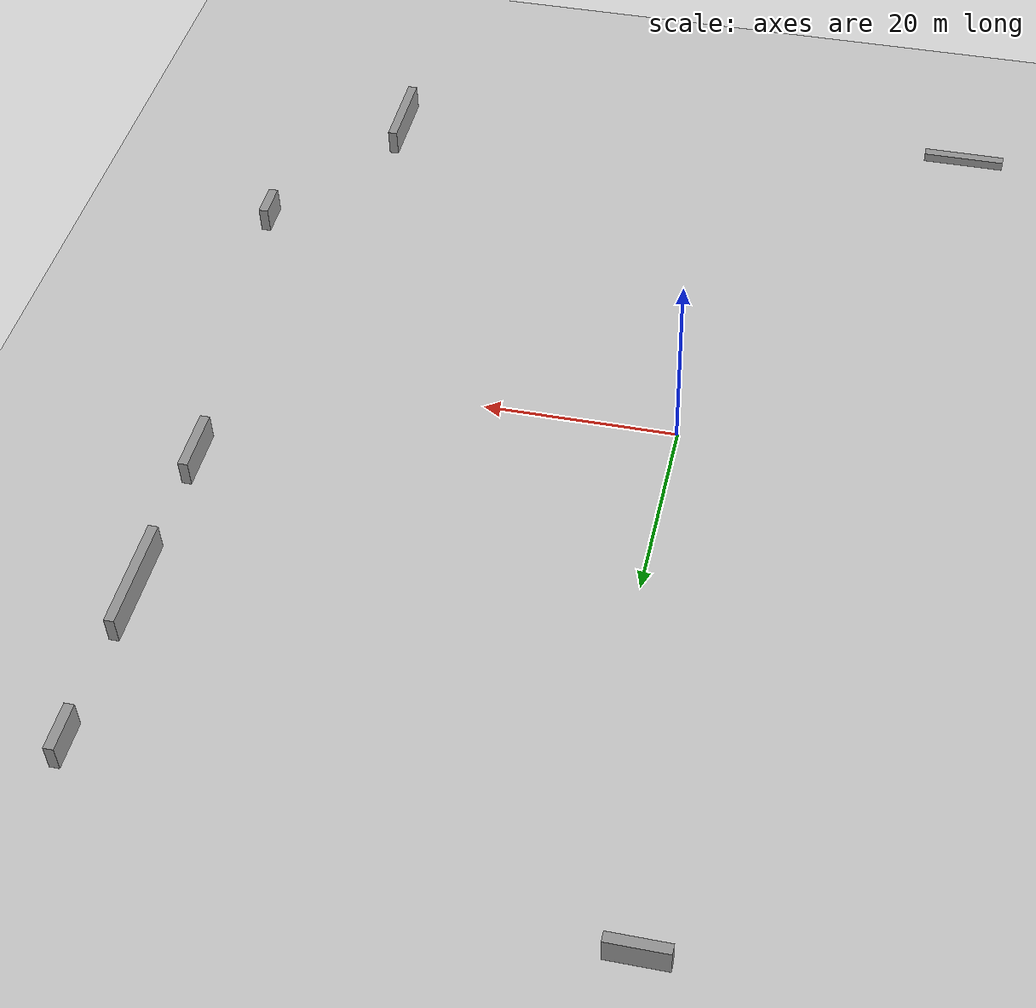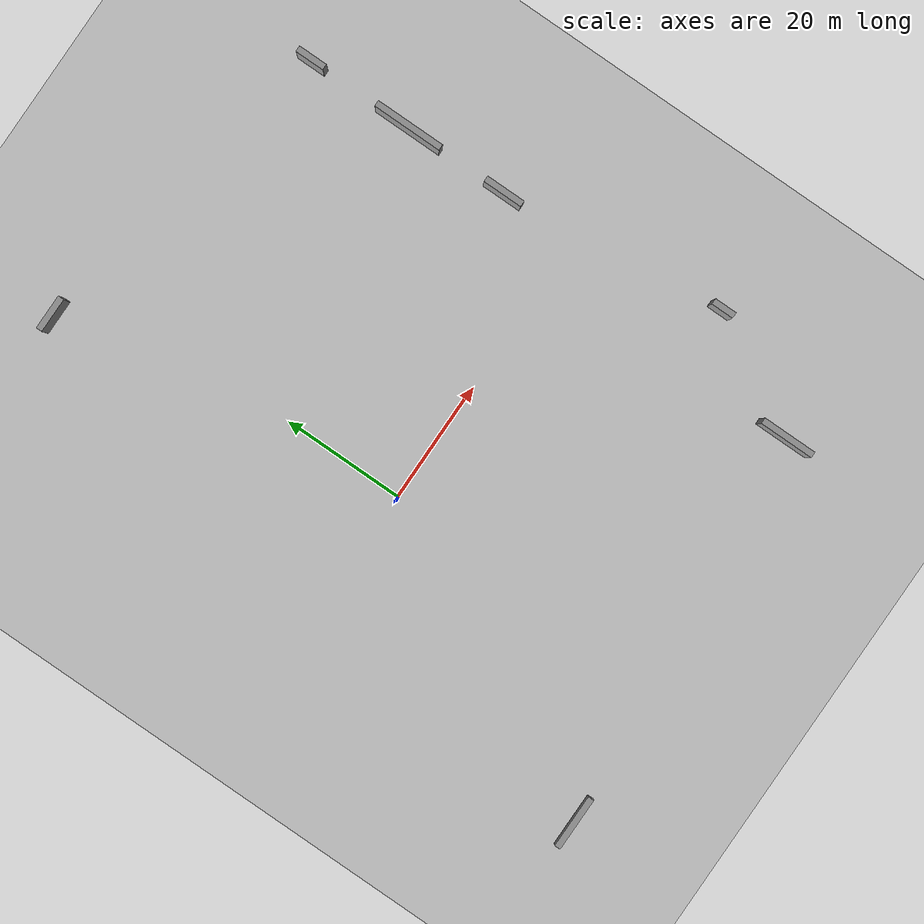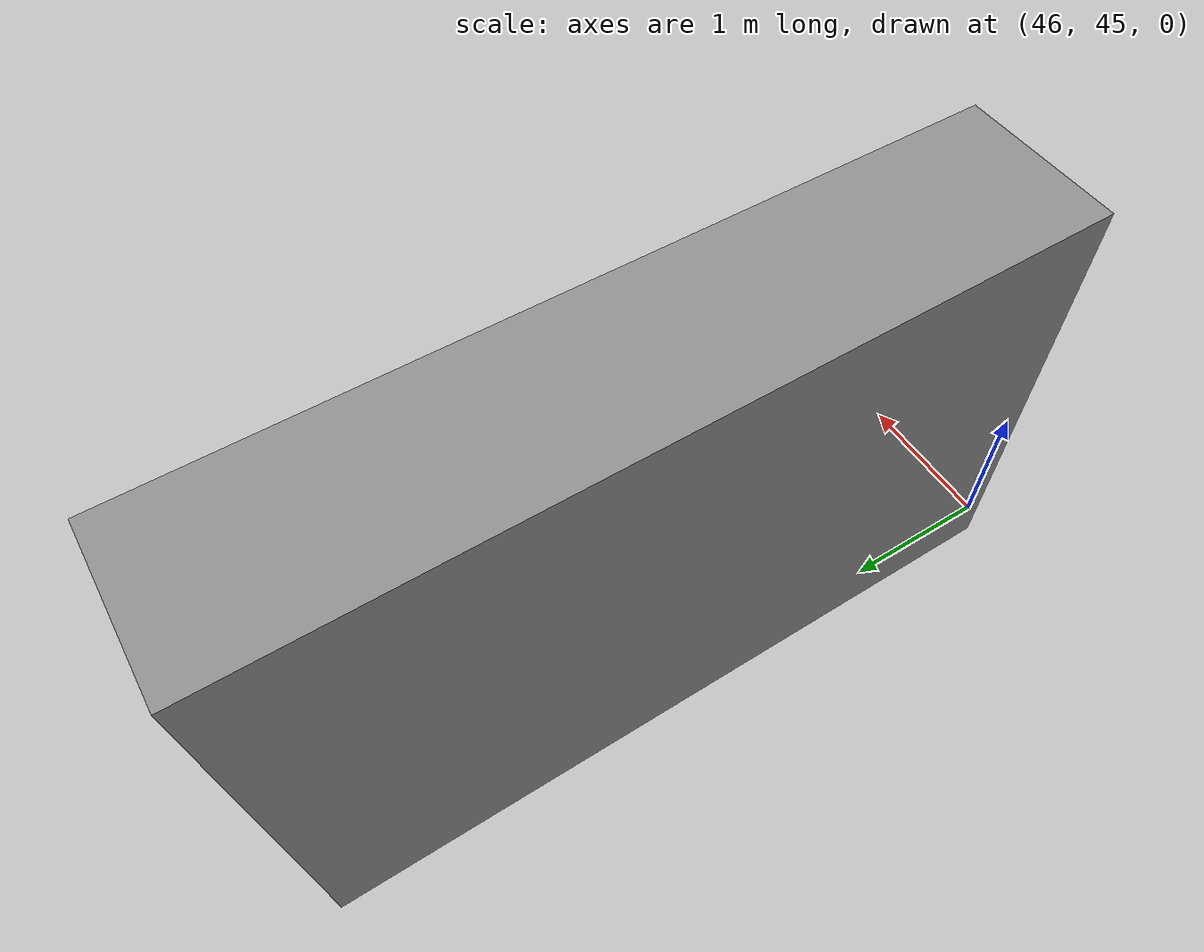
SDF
<sdf version="1.7">
 <world name="default">
  <plugin name="gazebo_occupancy_map" filename="libgazebo_2Dmap_plugin.so">
   <map_resolution>0.333333</map_resolution>
   <map_height>1.25</map_height>
   <map_size_x>128</map_size_x>
   <map_size_y>128</map_size_y>
   <init_robot_x>4</init_robot_x>
   <init_robot_y>4</init_robot_y>
  </plugin>
  <light name="sun" type="directional">
   <pose>0 0 10 0 -0 0</pose>
   <diffuse>0.8 0.8 0.8 1</diffuse>
   <specular>0.2 0.2 0.2 1</specular>
   <attenuation>
    <range>1000</range>
    <constant>0.9</constant>
    <linear>0.01</linear>
    <quadratic>0.001</quadratic>
   </attenuation>
   <direction>-0.5 0.1 -0.9</direction>
   <spot><inner_angle>0</inner_angle><outer_angle>0</outer_angle><falloff>0</falloff></spot>
  </light>
  <gravity>0 0 -9.8</gravity>
  <magnetic_field>6e-06 2.3e-05 -4.2e-05</magnetic_field>
  <atmosphere type="adiabatic"/>
  <physics type="ode">
   <max_step_size>0.001</max_step_size>
   <real_time_factor>1</real_time_factor>
   <real_time_update_rate>1000</real_time_update_rate>
  </physics>
  <scene><ambient>0.4 0.4 0.4 1</ambient><background>0.7 0.7 0.7 1</background><shadows>1</shadows></scene>
  <spherical_coordinates>
   <surface_model>EARTH_WGS84</surface_model>
   <latitude_deg>0</latitude_deg>
   <longitude_deg>0</longitude_deg>
   <elevation>0</elevation>
   <heading_deg>0</heading_deg>
  </spherical_coordinates>
  <model name="ground_plane">
   <static>1</static>
   <link name="link">
    <collision name="collision">
     <geometry><plane><normal>0 0 1</normal><size>100 100</size></plane></geometry>
     <surface>
      <contact><collide_bitmask>65535</collide_bitmask></contact>
      <friction><ode><mu>100</mu><mu2>50</mu2></ode></friction>
     </surface>
    </collision>
    <visual name="visual">
     <cast_shadows>0</cast_shadows>
     <geometry><plane><normal>0 0 1</normal><size>100 100</size></plane></geometry>
     <material>
      <script><uri>file://media/materials/scripts/gazebo.material</uri><name>Gazebo/Grey</name></script>
     </material>
    </visual>
   </link>
  </model>
  <model name="unit_box_7">
   <static>1</static>
   <pose>-6.78513 57.8284 1.42844 0 -0 0</pose>
   <link name="link">
    <inertial>
     <mass>1</mass>
     <inertia>
      <ixx>0.166667</ixx>
      <ixy>0</ixy>
      <ixz>0</ixz>
      <iyy>0.166667</iyy>
      <iyz>0</iyz>
      <izz>0.166667</izz>
     </inertia>
    </inertial>
    <collision name="collision"><geometry><box><size>5.77914 1 2.88254</size></box></geometry></collision>
    <visual name="visual">
     <geometry><box><size>5.77914 1 2.88254</size></box></geometry>
     <material>
      <script><name>Gazebo/Grey</name><uri>file://media/materials/scripts/gazebo.material</uri></script>
     </material>
    </visual>
   </link>
  </model>
  <model name="unit_box_9">
   <static>1</static>
   <pose>-25.1197 -49.5353 0.499995 0 -0 0</pose>
   <link name="link">
    <inertial>
     <mass>1</mass>
     <inertia>
      <ixx>0.166667</ixx>
      <ixy>0</ixy>
      <ixz>0</ixz>
      <iyy>0.166667</iyy>
      <iyz>0</iyz>
      <izz>0.166667</izz>
     </inertia>
    </inertial>
    <collision name="collision"><geometry><box><size>8.90628 1 1</size></box></geometry></collision>
    <visual name="visual">
     <geometry><box><size>8.90628 1 1</size></box></geometry>
     <material>
      <script><name>Gazebo/Grey</name><uri>file://media/materials/scripts/gazebo.material</uri></script>
     </material>
    </visual>
   </link>
  </model>
  <model name="unit_box_18">
   <static>1</static>
   <pose>46.3695 29.9823 1.38093 0 -0 0</pose>
   <link name="link">
    <inertial>
     <mass>1</mass>
     <inertia>
      <ixx>0.166667</ixx>
      <ixy>0</ixy>
      <ixz>0</ixz>
      <iyy>0.166667</iyy>
      <iyz>0</iyz>
      <izz>0.166667</izz>
     </inertia>
    </inertial>
    <collision name="collision"><geometry><box><size>1 11.5741 2.9047</size></box></geometry></collision>
    <visual name="visual">
     <geometry><box><size>1 11.5741 2.9047</size></box></geometry>
     <material>
      <script><name>Gazebo/Grey</name><uri>file://media/materials/scripts/gazebo.material</uri></script>
     </material>
    </visual>
   </link>
  </model>
  <model name="unit_box_19">
   <static>1</static>
   <pose>46.3727 47.5393 1.43027 0 -0 0</pose>
   <link name="link">
    <inertial>
     <mass>1</mass>
     <inertia>
      <ixx>0.166667</ixx>
      <ixy>0</ixy>
      <ixz>0</ixz>
      <iyy>0.166667</iyy>
      <iyz>0</iyz>
      <izz>0.166667</izz>
     </inertia>
    </inertial>
    <collision name="collision"><geometry><box><size>1 4.83716 2.87218</size></box></geometry></collision>
    <visual name="visual">
     <geometry><box><size>1 4.83716 2.87218</size></box></geometry>
     <material>
      <script><name>Gazebo/Grey</name><uri>file://media/materials/scripts/gazebo.material</uri></script>
     </material>
    </visual>
   </link>
  </model>
  <model name="unit_box_28">
   <static>1</static>
   <pose>46.3638 12.7925 1.42393 0 -0 0</pose>
   <link name="link">
    <inertial>
     <mass>1</mass>
     <inertia>
      <ixx>0.166667</ixx>
      <ixy>0</ixy>
      <ixz>0</ixz>
      <iyy>0.166667</iyy>
      <iyz>0</iyz>
      <izz>0.166667</izz>
     </inertia>
    </inertial>
    <collision name="collision"><geometry><box><size>1 6.60842 2.83852</size></box></geometry></collision>
    <visual name="visual">
     <geometry><box><size>1 6.60842 2.83852</size></box></geometry>
     <material>
      <script><name>Gazebo/Grey</name><uri>file://media/materials/scripts/gazebo.material</uri></script>
     </material>
    </visual>
   </link>
  </model>
  <model name="unit_box_39">
   <static>1</static>
   <pose>50.6459 -23.9163 1.29038 0 -0 0</pose>
   <link name="link">
    <inertial>
     <mass>1</mass>
     <inertia>
      <ixx>0.166667</ixx>
      <ixy>0</ixy>
      <ixz>0</ixz>
      <iyy>0.166667</iyy>
      <iyz>0</iyz>
      <izz>0.166667</izz>
     </inertia>
    </inertial>
    <collision name="collision"><geometry><box><size>1 3.7109 2.81976</size></box></geometry></collision>
    <visual name="visual">
     <geometry><box><size>1 3.7109 2.81976</size></box></geometry>
     <material>
      <script><name>Gazebo/Grey</name><uri>file://media/materials/scripts/gazebo.material</uri></script>
     </material>
    </visual>
   </link>
  </model>
  <model name="unit_box_30">
   <static>1</static>
   <pose>40.2283 -42.6074 1.39533 0 -0 0</pose>
   <link name="link">
    <inertial>
     <mass>1</mass>
     <inertia>
      <ixx>0.166667</ixx>
      <ixy>0</ixy>
      <ixz>0</ixz>
      <iyy>0.166667</iyy>
      <iyz>0</iyz>
      <izz>0.166667</izz>
     </inertia>
    </inertial>
    <collision name="collision"><geometry><box><size>1 8.97481 2.8898</size></box></geometry></collision>
    <visual name="visual">
     <geometry><box><size>1 8.97481 2.8898</size></box></geometry>
     <material>
      <script><name>Gazebo/Grey</name><uri>file://media/materials/scripts/gazebo.material</uri></script>
     </material>
    </visual>
   </link>
  </model>
 </world>
</sdf>
